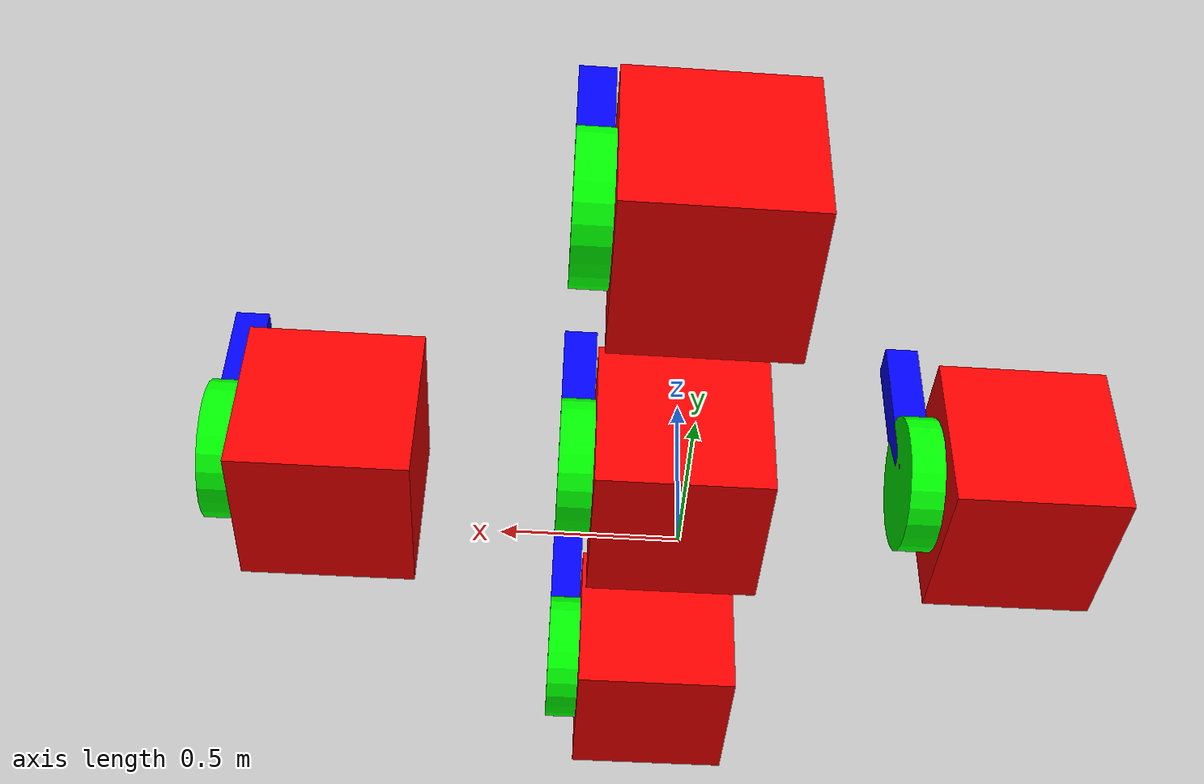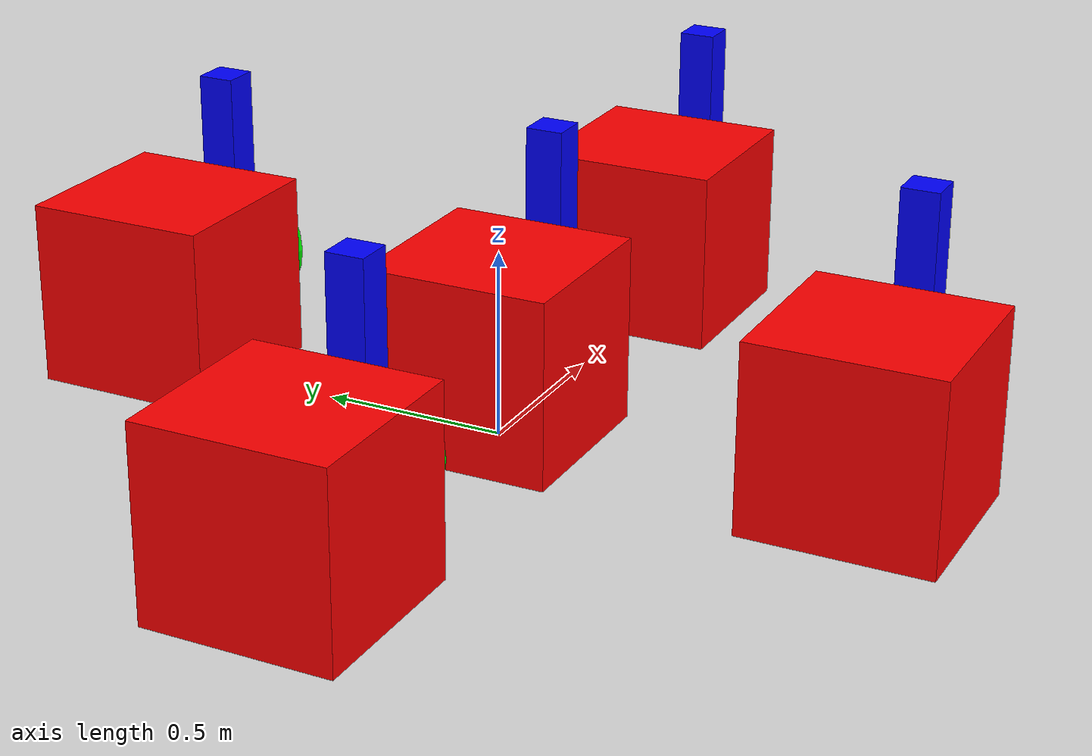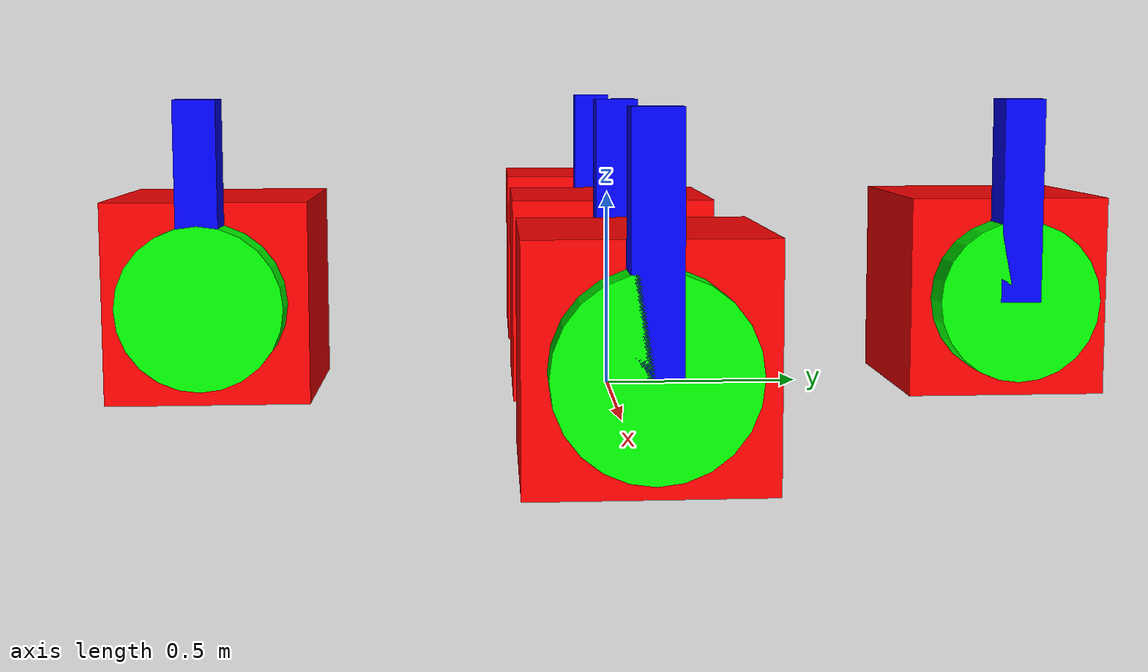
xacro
<?xml version="1.0"?>
<robot xmlns:xacro="http://www.ros.org/wiki/xacro" name="multiple_joints_test">

<xacro:property name="PI" value="3.141592"/>

    <xacro:property name="rotor_inertia" value="1.0"/>
    <xacro:property name="rotor_position_max" value="${10*PI}"/>
    <xacro:property name="rotor_position_min" value="${-10*PI}"/>
    <xacro:property name="rotor_velocity_max" value="10.0"/>
    <xacro:property name="rotor_effort_max" value="10.0"/>

    <link name="world"/>

    <!-- Single joint macro -->
    <xacro:include filename="core/single_joint.urdf.xacro"/>

    <xacro:single_joint_macro name="body_1" parent_name="world" x="0.0" y="0.0" inertia="${rotor_inertia}" pos_max="${rotor_position_max}" pos_min="${rotor_position_min}" vel_max="${rotor_velocity_max}" effort_max="${rotor_effort_max}"/>
    <xacro:single_joint_macro name="body_2" parent_name="world" x="1.0" y="0.0" inertia="${rotor_inertia}" pos_max="${rotor_position_max}" pos_min="${rotor_position_min}" vel_max="${rotor_velocity_max}" effort_max="${rotor_effort_max}"/>
    <xacro:single_joint_macro name="body_3" parent_name="world" x="-1.0" y="0.0" inertia="${rotor_inertia}" pos_max="${rotor_position_max}" pos_min="${rotor_position_min}" vel_max="${rotor_velocity_max}" effort_max="${rotor_effort_max}"/>
    <xacro:single_joint_macro name="body_4" parent_name="world" x="0.0" y="1.0" inertia="${rotor_inertia}" pos_max="${rotor_position_max}" pos_min="${rotor_position_min}" vel_max="${rotor_velocity_max}" effort_max="${rotor_effort_max}"/>
    <xacro:single_joint_macro name="body_5" parent_name="world" x="0.0" y="-1.0" inertia="${rotor_inertia}" pos_max="${rotor_position_max}" pos_min="${rotor_position_min}" vel_max="${rotor_velocity_max}" effort_max="${rotor_effort_max}"/>

    <ros2_control name="multiple_joints_test" type="system">
        <hardware>
            <plugin>ign_ros2_control/IgnitionSystem</plugin>
        </hardware>
        <!-- Add joint hardware interfaces -->
        <xacro:include filename="core/joint_hardware_macros.urdf.xacro"/>
        <xacro:joint_hardware_macro name="body_1" pos_min="rotor_position_min" pos_max="rotor_position_max" vel_max="rotor_velocity_max" effort_max="rotor_effort_max"/>
        <xacro:joint_hardware_macro name="body_2" pos_min="rotor_position_min" pos_max="rotor_position_max" vel_max="rotor_velocity_max" effort_max="rotor_effort_max"/>
        <xacro:joint_hardware_macro name="body_3" pos_min="rotor_position_min" pos_max="rotor_position_max" vel_max="rotor_velocity_max" effort_max="rotor_effort_max"/>
        <xacro:joint_hardware_macro name="body_4" pos_min="rotor_position_min" pos_max="rotor_position_max" vel_max="rotor_velocity_max" effort_max="rotor_effort_max"/>
        <xacro:joint_hardware_macro name="body_5" pos_min="rotor_position_min" pos_max="rotor_position_max" vel_max="rotor_velocity_max" effort_max="rotor_effort_max"/>
    </ros2_control>

    <gazebo>
        <plugin filename="ign_ros2_control-system" name="ign_ros2_control::IgnitionROS2ControlPlugin">
            <parameters>$(find joint_controller)/config/multiple_joints_test.yaml</parameters>
        </plugin>
    </gazebo>

</robot>

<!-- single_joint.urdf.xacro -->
<robot xmlns:xacro="http://www.ros.org/wiki/xacro" name="single_joint_urdf">

<xacro:property name="stator_length" value="0.5"/>
<xacro:property name="rotor_radius" value="0.2"/>
<xacro:property name="rotor_size" value="0.1"/>
<xacro:property name="rotor_length" value="0.5"/>

<xacro:macro name="single_joint_macro" params="name parent_name x y inertia pos_max pos_min vel_max effort_max">

    <link name="${name}_stator">
        <inertial>
            <origin xyz="0.0 0.0 0.0" rpy="0.0 0.0 0.0"/>
            <mass value="10.0"/>
            <inertia ixx="1.0" ixy="0.0" ixz="0.0" iyy="1.0" iyz="0.0" izz="1.0"/>
        </inertial>

        <visual>
            <origin xyz="0.0 0.0 0.0" rpy="0.0 0.0 0.0"/>
            <geometry>
                <box size="${stator_length} ${stator_length} ${stator_length}"/>
            </geometry>
            <material name="">
                <color rgba="1.0 0.0 0.0 1.0"/>
            </material>
        </visual>
    </link>

    <gazebo reference="${name}_stator">
        <material>Gazebo/Red</material>
    </gazebo>

    <link name="${name}_rotor">
        <inertial>
            <origin xyz="0.0 0.0 0.0" rpy="0.0 0.0 0.0"/>
            <mass value="1.0"/>
            <inertia ixx="1.0" ixy="0.0" ixz="0.0" iyy="1.0" iyz="0.0" izz="${inertia}"/>
        </inertial>

        <visual>
            <origin xyz="0.0 0.0 0.0" rpy="0.0 0.0 0.0"/>
            <geometry>
                <cylinder radius="${rotor_radius}" length="${rotor_size}"/>
            </geometry>
           <material name="">
                <color rgba="0.0 1.0 0.0 1.0"/>
            </material>
        </visual>
        <visual>
            <origin xyz="${-rotor_length/2} 0.0 0.0" rpy="0.0 0.0 0.0"/>
            <geometry>
                <box size="${rotor_length} ${rotor_size} ${rotor_size}"/>
            </geometry>
            <material name="">
                <color rgba="0.0 0.0 1.0 1.0"/>
            </material>
        </visual>
    </link>

    <gazebo reference="${name}_rotor">
        <material>Gazebo/Green</material>
    </gazebo>

    <joint name="${parent_name}_${name}" type="fixed">
        <origin xyz="${x} ${y} ${stator_length/2}" rpy="0.0 0.0 0.0"/>
        <parent link="${parent_name}"/>
        <child link="${name}_stator"/>
    </joint>

    <joint name="${name}_joint" type="revolute">
        <origin xyz="${stator_length/2 + rotor_size/2} 0.0 0.0" rpy="0.0 ${PI/2} 0.0"/>
        <parent link="${name}_stator"/>
        <child link="${name}_rotor"/>
        <axis xyz="0.0 0.0 1.0"/>
        <limit lower="${pos_min}" upper="${pos_max}" effort="${effort_max}" velocity="${vel_max}"/>
    </joint>
</xacro:macro>
</robot>
